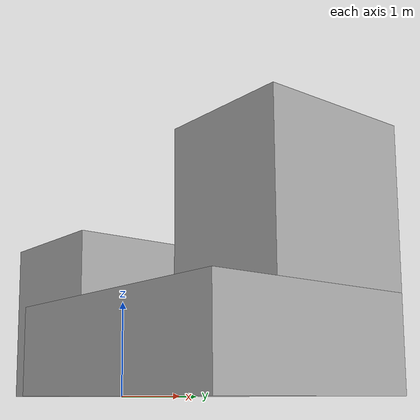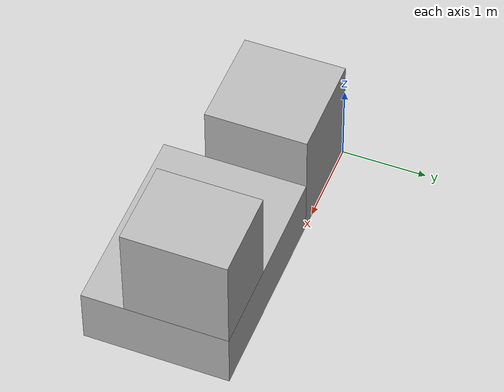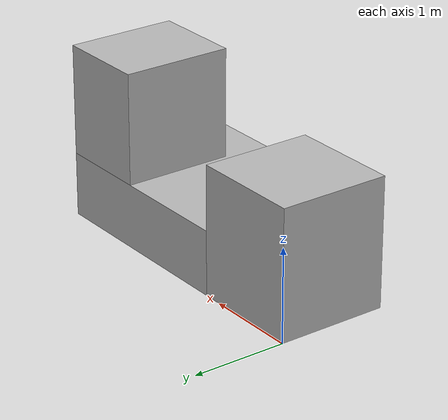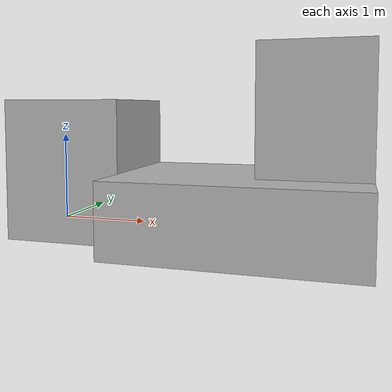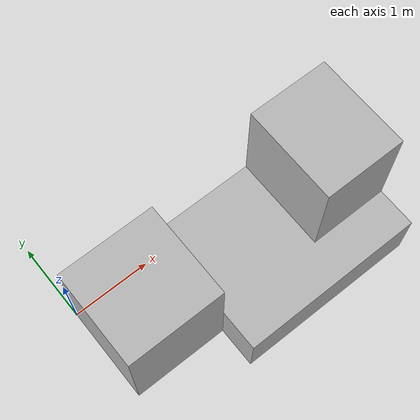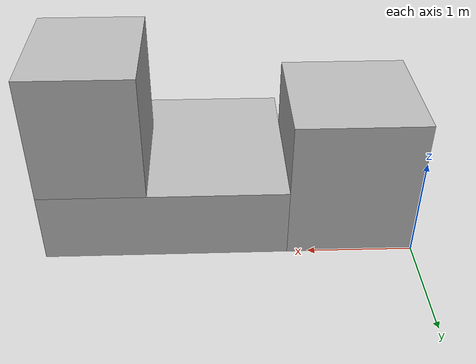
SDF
<?xml version="1.0"?>
<sdf version="1.6">
  <model name="obstacle_01">
    <static>true</static>

    <link name="link_01_1">
      <pose frame=''>2.35 -0.85 0.35 0 -0 0</pose>
      <collision name="body_collision">
        <geometry>
          <box>
            <size>2.30 1.70 0.70</size>
          </box>
        </geometry>
      </collision>

      <visual name="visual_01_1">
	<pose frame=''>0 0 0 0 -0 0</pose>
        <geometry>
          <box>
            <size>2.30 1.70 0.70</size>
          </box>
	</geometry>

	    <material>
		<script>
			<uri>model://obstacle_01/materials/scripts</uri>
			<uri>model://obstacle_01/materials/textures</uri>
			<name>repeated_01</name>
		</script>
	    </material>

      </visual>

    </link>

    <link name="link_01_2">
      <pose frame=''>0.60 -0.60 0.7 0 -0 0</pose>
      <collision name="body_collision">
        <geometry>
          <box>
            <size>1.20 1.20 1.40</size>
          </box>
        </geometry>
      </collision>

      <visual name="visual_01_2">
	<pose frame=''>0 0 0 0 -0 0</pose>
        <geometry>
          <box>
            <size>1.20 1.20 1.40</size>
          </box>
	</geometry>

	    <material>
		<script>
			<uri>model://obstacle_01/materials/scripts</uri>
			<uri>model://obstacle_01/materials/textures</uri>
			<name>repeated_01</name>
		</script>
	    </material>

      </visual>

    </link>

    <link name="link_01_3">
      <pose frame=''>3.00 -0.60 1.30 0 -0 0</pose>
      <collision name="body_collision">
        <geometry>
          <box>
            <size>1.00 1.20 1.20</size>
          </box>
        </geometry>
      </collision>

      <visual name="visual_01_3">
	<pose frame=''>0 0 0 0 -0 0</pose>
        <geometry>
          <box>
            <size>1.00 1.20 1.20</size>
          </box>
	</geometry>

	    <material>
		<script>
			<uri>model://obstacle_01/materials/scripts</uri>
			<uri>model://obstacle_01/materials/textures</uri>
			<name>repeated_01</name>
		</script>
	    </material>

      </visual>

    </link>

  </model>
</sdf>
